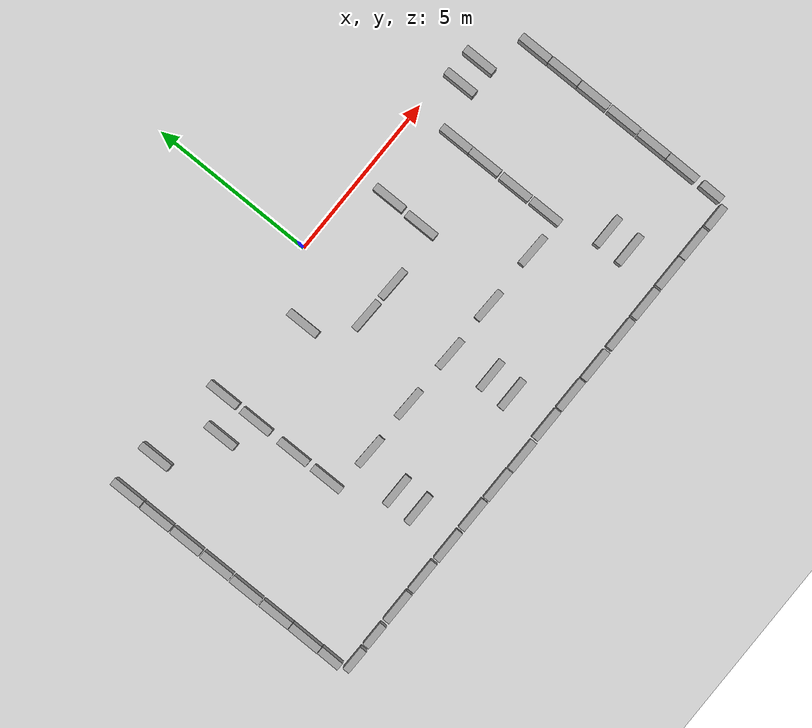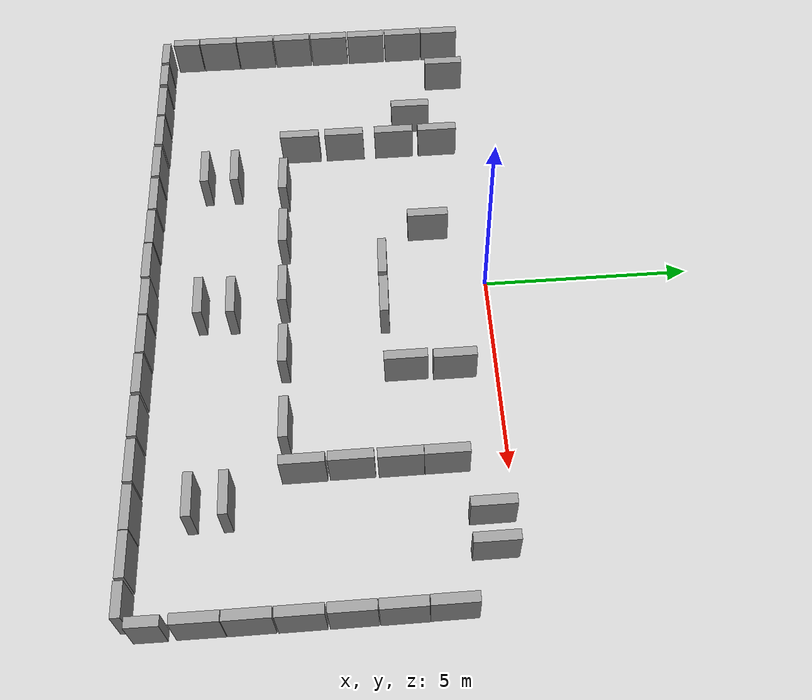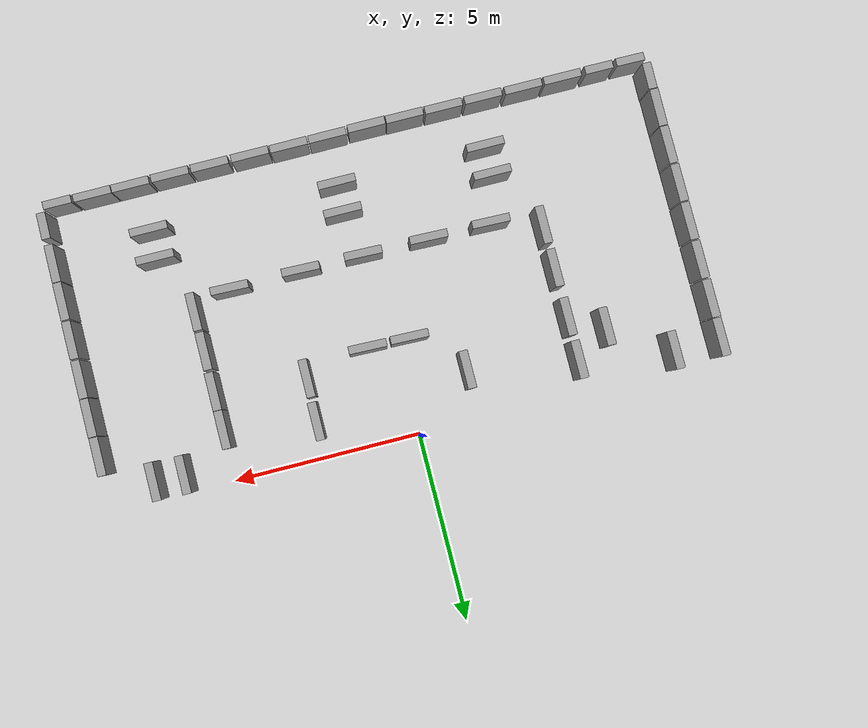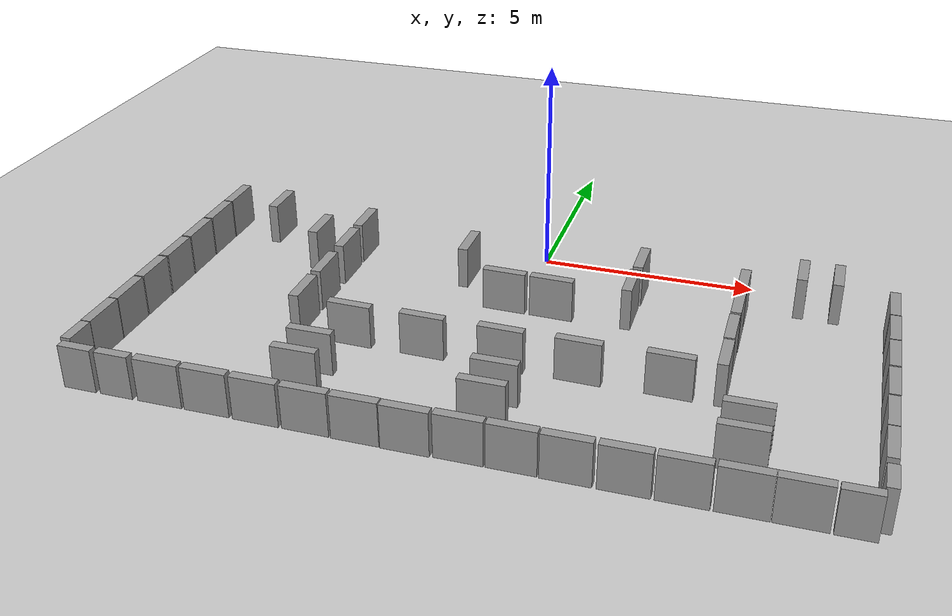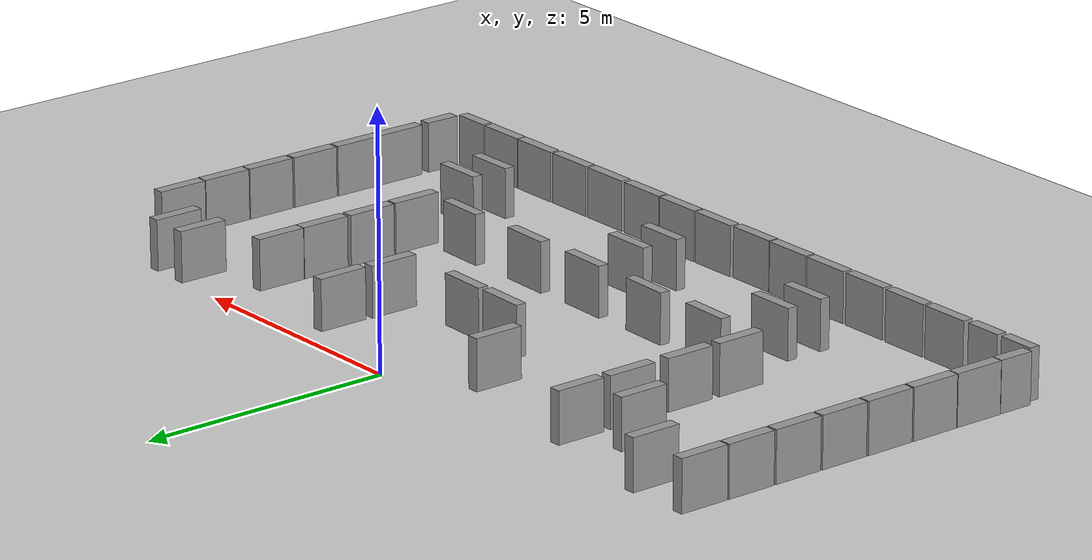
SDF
<sdf version="1.6">
 <world name="default">
  <model name="ground_plane">
   <static>1</static>
   <static>1</static>
   <link name="link">
    <collision name="collision">
     <geometry><plane><normal>0 0 1</normal><size>100 100</size></plane></geometry>
     <surface><friction><ode><mu>100</mu><mu2>50</mu2></ode></friction></surface>
    </collision>
    <visual name="visual">
     <cast_shadows>0</cast_shadows>
     <geometry><plane><normal>0 0 1</normal><size>100 100</size></plane></geometry>
     <material>
      <script><uri>file://media/materials/scripts/gazebo.material</uri><name>Gazebo/Grey</name></script>
     </material>
    </visual>
   </link>
  </model>
  <model name="unit_box_0_clone_8">
   <pose>8.11912 -1.48629 0.5 0 -0 0.000237</pose>
   <link name="link">
    <inertial>
     <mass>1</mass>
     <inertia>
      <ixx>0.166667</ixx>
      <ixy>0</ixy>
      <ixz>0</ixz>
      <iyy>0.166667</iyy>
      <iyz>0</iyz>
      <izz>0.166667</izz>
     </inertia>
    </inertial>
    <collision name="collision"><geometry><box><size>0.230819 1 1</size></box></geometry></collision>
    <visual name="visual">
     <geometry><box><size>0.230819 1 1</size></box></geometry>
     <material>
      <script><name>Gazebo/Grey</name><uri>file://media/materials/scripts/gazebo.material</uri></script>
     </material>
    </visual>
   </link>
  </model>
  <model name="unit_box_0_clone_9">
   <pose>8.12548 -2.5042 0.5 0 -0 0.000237</pose>
   <link name="link">
    <inertial>
     <mass>1</mass>
     <inertia>
      <ixx>0.166667</ixx>
      <ixy>0</ixy>
      <ixz>0</ixz>
      <iyy>0.166667</iyy>
      <iyz>0</iyz>
      <izz>0.166667</izz>
     </inertia>
    </inertial>
    <collision name="collision"><geometry><box><size>0.230819 1 1</size></box></geometry></collision>
    <visual name="visual">
     <geometry><box><size>0.230819 1 1</size></box></geometry>
     <material>
      <script><name>Gazebo/Grey</name><uri>file://media/materials/scripts/gazebo.material</uri></script>
     </material>
    </visual>
   </link>
  </model>
  <model name="unit_box_0_clone_10">
   <pose>8.12331 -3.52223 0.5 0 -0 0.000237</pose>
   <link name="link">
    <inertial>
     <mass>1</mass>
     <inertia>
      <ixx>0.166667</ixx>
      <ixy>0</ixy>
      <ixz>0</ixz>
      <iyy>0.166667</iyy>
      <iyz>0</iyz>
      <izz>0.166667</izz>
     </inertia>
    </inertial>
    <collision name="collision"><geometry><box><size>0.230819 1 1</size></box></geometry></collision>
    <visual name="visual">
     <geometry><box><size>0.230819 1 1</size></box></geometry>
     <material>
      <script><name>Gazebo/Grey</name><uri>file://media/materials/scripts/gazebo.material</uri></script>
     </material>
    </visual>
   </link>
  </model>
  <model name="unit_box_0_clone_11">
   <pose>8.1233 -4.56316 0.5 0 -0 0.000237</pose>
   <link name="link">
    <inertial>
     <mass>1</mass>
     <inertia>
      <ixx>0.166667</ixx>
      <ixy>0</ixy>
      <ixz>0</ixz>
      <iyy>0.166667</iyy>
      <iyz>0</iyz>
      <izz>0.166667</izz>
     </inertia>
    </inertial>
    <collision name="collision"><geometry><box><size>0.230819 1 1</size></box></geometry></collision>
    <visual name="visual">
     <geometry><box><size>0.230819 1 1</size></box></geometry>
     <material>
      <script><name>Gazebo/Grey</name><uri>file://media/materials/scripts/gazebo.material</uri></script>
     </material>
    </visual>
   </link>
  </model>
  <model name="unit_box_0_clone_12">
   <pose>8.11815 -5.59377 0.5 0 -0 0.000237</pose>
   <link name="link">
    <inertial>
     <mass>1</mass>
     <inertia>
      <ixx>0.166667</ixx>
      <ixy>0</ixy>
      <ixz>0</ixz>
      <iyy>0.166667</iyy>
      <iyz>0</iyz>
      <izz>0.166667</izz>
     </inertia>
    </inertial>
    <collision name="collision"><geometry><box><size>0.230819 1 1</size></box></geometry></collision>
    <visual name="visual">
     <geometry><box><size>0.230819 1 1</size></box></geometry>
     <material>
      <script><name>Gazebo/Grey</name><uri>file://media/materials/scripts/gazebo.material</uri></script>
     </material>
    </visual>
   </link>
  </model>
  <model name="unit_box_0_clone_13">
   <pose>8.11333 -6.60776 0.5 0 -0 -0.005418</pose>
   <link name="link">
    <inertial>
     <mass>1</mass>
     <inertia>
      <ixx>0.166667</ixx>
      <ixy>0</ixy>
      <ixz>0</ixz>
      <iyy>0.166667</iyy>
      <iyz>0</iyz>
      <izz>0.166667</izz>
     </inertia>
    </inertial>
    <collision name="collision"><geometry><box><size>0.230819 1 1</size></box></geometry></collision>
    <visual name="visual">
     <geometry><box><size>0.230819 1 1</size></box></geometry>
     <material>
      <script><name>Gazebo/Grey</name><uri>file://media/materials/scripts/gazebo.material</uri></script>
     </material>
    </visual>
   </link>
  </model>
  <model name="unit_box_clone_15_clone_0">
   <pose>6.71207 -8.13083 0.5 0 -0 0.000459</pose>
   <link name="link">
    <inertial>
     <mass>1</mass>
     <inertia>
      <ixx>0.166667</ixx>
      <ixy>0</ixy>
      <ixz>0</ixz>
      <iyy>0.166667</iyy>
      <iyz>0</iyz>
      <izz>0.166667</izz>
     </inertia>
    </inertial>
    <collision name="collision"><geometry><box><size>1 0.210541 1</size></box></geometry></collision>
    <visual name="visual">
     <geometry><box><size>1 0.210541 1</size></box></geometry>
     <material>
      <script><name>Gazebo/Grey</name><uri>file://media/materials/scripts/gazebo.material</uri></script>
     </material>
    </visual>
   </link>
  </model>
  <model name="unit_box_clone_15_clone_1">
   <pose>5.69715 -8.13082 0.5 0 -0 0.000459</pose>
   <link name="link">
    <inertial>
     <mass>1</mass>
     <inertia>
      <ixx>0.166667</ixx>
      <ixy>0</ixy>
      <ixz>0</ixz>
      <iyy>0.166667</iyy>
      <iyz>0</iyz>
      <izz>0.166667</izz>
     </inertia>
    </inertial>
    <collision name="collision"><geometry><box><size>1 0.210541 1</size></box></geometry></collision>
    <visual name="visual">
     <geometry><box><size>1 0.210541 1</size></box></geometry>
     <material>
      <script><name>Gazebo/Grey</name><uri>file://media/materials/scripts/gazebo.material</uri></script>
     </material>
    </visual>
   </link>
  </model>
  <model name="unit_box_clone_15_clone_2">
   <pose>4.63881 -8.137 0.5 0 -0 0.000459</pose>
   <link name="link">
    <inertial>
     <mass>1</mass>
     <inertia>
      <ixx>0.166667</ixx>
      <ixy>0</ixy>
      <ixz>0</ixz>
      <iyy>0.166667</iyy>
      <iyz>0</iyz>
      <izz>0.166667</izz>
     </inertia>
    </inertial>
    <collision name="collision"><geometry><box><size>1 0.210541 1</size></box></geometry></collision>
    <visual name="visual">
     <geometry><box><size>1 0.210541 1</size></box></geometry>
     <material>
      <script><name>Gazebo/Grey</name><uri>file://media/materials/scripts/gazebo.material</uri></script>
     </material>
    </visual>
   </link>
  </model>
  <model name="unit_box_clone_15_clone_3">
   <pose>3.57975 -8.137 0.5 0 -0 0.000459</pose>
   <link name="link">
    <inertial>
     <mass>1</mass>
     <inertia>
      <ixx>0.166667</ixx>
      <ixy>0</ixy>
      <ixz>0</ixz>
      <iyy>0.166667</iyy>
      <iyz>0</iyz>
      <izz>0.166667</izz>
     </inertia>
    </inertial>
    <collision name="collision"><geometry><box><size>1 0.210541 1</size></box></geometry></collision>
    <visual name="visual">
     <geometry><box><size>1 0.210541 1</size></box></geometry>
     <material>
      <script><name>Gazebo/Grey</name><uri>file://media/materials/scripts/gazebo.material</uri></script>
     </material>
    </visual>
   </link>
  </model>
  <model name="unit_box_clone_15_clone_4">
   <pose>2.49815 -8.13699 0.5 0 -0 0.000459</pose>
   <link name="link">
    <inertial>
     <mass>1</mass>
     <inertia>
      <ixx>0.166667</ixx>
      <ixy>0</ixy>
      <ixz>0</ixz>
      <iyy>0.166667</iyy>
      <iyz>0</iyz>
      <izz>0.166667</izz>
     </inertia>
    </inertial>
    <collision name="collision"><geometry><box><size>1 0.210541 1</size></box></geometry></collision>
    <visual name="visual">
     <geometry><box><size>1 0.210541 1</size></box></geometry>
     <material>
      <script><name>Gazebo/Grey</name><uri>file://media/materials/scripts/gazebo.material</uri></script>
     </material>
    </visual>
   </link>
  </model>
  <model name="unit_box_clone_15_clone_5">
   <pose>1.46162 -8.12572 0.5 0 -0 0.000459</pose>
   <link name="link">
    <inertial>
     <mass>1</mass>
     <inertia>
      <ixx>0.166667</ixx>
      <ixy>0</ixy>
      <ixz>0</ixz>
      <iyy>0.166667</iyy>
      <iyz>0</iyz>
      <izz>0.166667</izz>
     </inertia>
    </inertial>
    <collision name="collision"><geometry><box><size>1 0.210541 1</size></box></geometry></collision>
    <visual name="visual">
     <geometry><box><size>1 0.210541 1</size></box></geometry>
     <material>
      <script><name>Gazebo/Grey</name><uri>file://media/materials/scripts/gazebo.material</uri></script>
     </material>
    </visual>
   </link>
  </model>
  <model name="unit_box_clone_15_clone_6">
   <pose>0.425086 -8.12571 0.5 0 -0 0.000459</pose>
   <link name="link">
    <inertial>
     <mass>1</mass>
     <inertia>
      <ixx>0.166667</ixx>
      <ixy>0</ixy>
      <ixz>0</ixz>
      <iyy>0.166667</iyy>
      <iyz>0</iyz>
      <izz>0.166667</izz>
     </inertia>
    </inertial>
    <collision name="collision"><geometry><box><size>1 0.210541 1</size></box></geometry></collision>
    <visual name="visual">
     <geometry><box><size>1 0.210541 1</size></box></geometry>
     <material>
      <script><name>Gazebo/Grey</name><uri>file://media/materials/scripts/gazebo.material</uri></script>
     </material>
    </visual>
   </link>
  </model>
  <model name="unit_box_clone_15_clone_7">
   <pose>-0.633976 -8.14826 0.5 0 -0 0.000459</pose>
   <link name="link">
    <inertial>
     <mass>1</mass>
     <inertia>
      <ixx>0.166667</ixx>
      <ixy>0</ixy>
      <ixz>0</ixz>
      <iyy>0.166667</iyy>
      <iyz>0</iyz>
      <izz>0.166667</izz>
     </inertia>
    </inertial>
    <collision name="collision"><geometry><box><size>1 0.210541 1</size></box></geometry></collision>
    <visual name="visual">
     <geometry><box><size>1 0.210541 1</size></box></geometry>
     <material>
      <script><name>Gazebo/Grey</name><uri>file://media/materials/scripts/gazebo.material</uri></script>
     </material>
    </visual>
   </link>
  </model>
  <model name="unit_box_clone_15_clone_8">
   <pose>-1.65923 -8.13698 0.5 0 -0 0.000459</pose>
   <link name="link">
    <inertial>
     <mass>1</mass>
     <inertia>
      <ixx>0.166667</ixx>
      <ixy>0</ixy>
      <ixz>0</ixz>
      <iyy>0.166667</iyy>
      <iyz>0</iyz>
      <izz>0.166667</izz>
     </inertia>
    </inertial>
    <collision name="collision"><geometry><box><size>1 0.210541 1</size></box></geometry></collision>
    <visual name="visual">
     <geometry><box><size>1 0.210541 1</size></box></geometry>
     <material>
      <script><name>Gazebo/Grey</name><uri>file://media/materials/scripts/gazebo.material</uri></script>
     </material>
    </visual>
   </link>
  </model>
  <model name="unit_box_clone_15_clone_9">
   <pose>-2.70703 -8.12573 0.5 0 -0 0.000459</pose>
   <link name="link">
    <inertial>
     <mass>1</mass>
     <inertia>
      <ixx>0.166667</ixx>
      <ixy>0</ixy>
      <ixz>0</ixz>
      <iyy>0.166667</iyy>
      <iyz>0</iyz>
      <izz>0.166667</izz>
     </inertia>
    </inertial>
    <collision name="collision"><geometry><box><size>1 0.210541 1</size></box></geometry></collision>
    <visual name="visual">
     <geometry><box><size>1 0.210541 1</size></box></geometry>
     <material>
      <script><name>Gazebo/Grey</name><uri>file://media/materials/scripts/gazebo.material</uri></script>
     </material>
    </visual>
   </link>
  </model>
  <model name="unit_box_clone_15_clone_10">
   <pose>-3.77736 -8.12572 0.5 0 -0 0.000459</pose>
   <link name="link">
    <inertial>
     <mass>1</mass>
     <inertia>
      <ixx>0.166667</ixx>
      <ixy>0</ixy>
      <ixz>0</ixz>
      <iyy>0.166667</iyy>
      <iyz>0</iyz>
      <izz>0.166667</izz>
     </inertia>
    </inertial>
    <collision name="collision"><geometry><box><size>1 0.210541 1</size></box></geometry></collision>
    <visual name="visual">
     <geometry><box><size>1 0.210541 1</size></box></geometry>
     <material>
      <script><name>Gazebo/Grey</name><uri>file://media/materials/scripts/gazebo.material</uri></script>
     </material>
    </visual>
   </link>
  </model>
  <model name="unit_box_clone_15_clone_11">
   <pose>-4.85896 -8.11446 0.5 0 -0 0.000459</pose>
   <link name="link">
    <inertial>
     <mass>1</mass>
     <inertia>
      <ixx>0.166667</ixx>
      <ixy>0</ixy>
      <ixz>0</ixz>
      <iyy>0.166667</iyy>
      <iyz>0</iyz>
      <izz>0.166667</izz>
     </inertia>
    </inertial>
    <collision name="collision"><geometry><box><size>1 0.210541 1</size></box></geometry></collision>
    <visual name="visual">
     <geometry><box><size>1 0.210541 1</size></box></geometry>
     <material>
      <script><name>Gazebo/Grey</name><uri>file://media/materials/scripts/gazebo.material</uri></script>
     </material>
    </visual>
   </link>
  </model>
  <model name="unit_box_clone_15_clone_12">
   <pose>-5.91802 -8.11445 0.5 0 -0 0.000459</pose>
   <link name="link">
    <inertial>
     <mass>1</mass>
     <inertia>
      <ixx>0.166667</ixx>
      <ixy>0</ixy>
      <ixz>0</ixz>
      <iyy>0.166667</iyy>
      <iyz>0</iyz>
      <izz>0.166667</izz>
     </inertia>
    </inertial>
    <collision name="collision"><geometry><box><size>1 0.210541 1</size></box></geometry></collision>
    <visual name="visual">
     <geometry><box><size>1 0.210541 1</size></box></geometry>
     <material>
      <script><name>Gazebo/Grey</name><uri>file://media/materials/scripts/gazebo.material</uri></script>
     </material>
    </visual>
   </link>
  </model>
  <model name="unit_box_0_clone_4_clone_7">
   <pose>-8.12609 -0.518035 0.5 0 -0 0.000237</pose>
   <link name="link">
    <inertial>
     <mass>1</mass>
     <inertia>
      <ixx>0.166667</ixx>
      <ixy>0</ixy>
      <ixz>0</ixz>
      <iyy>0.166667</iyy>
      <iyz>0</iyz>
      <izz>0.166667</izz>
     </inertia>
    </inertial>
    <collision name="collision"><geometry><box><size>0.230819 1 1</size></box></geometry></collision>
    <visual name="visual">
     <geometry><box><size>0.230819 1 1</size></box></geometry>
     <material>
      <script><name>Gazebo/Grey</name><uri>file://media/materials/scripts/gazebo.material</uri></script>
     </material>
    </visual>
   </link>
  </model>
  <model name="unit_box_0_clone_4_clone_8">
   <pose>-8.13284 -1.54445 0.5 0 -0 0.000237</pose>
   <link name="link">
    <inertial>
     <mass>1</mass>
     <inertia>
      <ixx>0.166667</ixx>
      <ixy>0</ixy>
      <ixz>0</ixz>
      <iyy>0.166667</iyy>
      <iyz>0</iyz>
      <izz>0.166667</izz>
     </inertia>
    </inertial>
    <collision name="collision"><geometry><box><size>0.230819 1 1</size></box></geometry></collision>
    <visual name="visual">
     <geometry><box><size>0.230819 1 1</size></box></geometry>
     <material>
      <script><name>Gazebo/Grey</name><uri>file://media/materials/scripts/gazebo.material</uri></script>
     </material>
    </visual>
   </link>
  </model>
  <model name="unit_box_0_clone_4_clone_9">
   <pose>-8.13285 -2.58439 0.5 0 -0 0.000237</pose>
   <link name="link">
    <inertial>
     <mass>1</mass>
     <inertia>
      <ixx>0.166667</ixx>
      <ixy>0</ixy>
      <ixz>0</ixz>
      <iyy>0.166667</iyy>
      <iyz>0</iyz>
      <izz>0.166667</izz>
     </inertia>
    </inertial>
    <collision name="collision"><geometry><box><size>0.230819 1 1</size></box></geometry></collision>
    <visual name="visual">
     <geometry><box><size>0.230819 1 1</size></box></geometry>
     <material>
      <script><name>Gazebo/Grey</name><uri>file://media/materials/scripts/gazebo.material</uri></script>
     </material>
    </visual>
   </link>
  </model>
  <model name="unit_box_0_clone_4_clone_10">
   <pose>-8.13285 -3.62431 0.5 0 -0 0.000237</pose>
   <link name="link">
    <inertial>
     <mass>1</mass>
     <inertia>
      <ixx>0.166667</ixx>
      <ixy>0</ixy>
      <ixz>0</ixz>
      <iyy>0.166667</iyy>
      <iyz>0</iyz>
      <izz>0.166667</izz>
     </inertia>
    </inertial>
    <collision name="collision"><geometry><box><size>0.230819 1 1</size></box></geometry></collision>
    <visual name="visual">
     <geometry><box><size>0.230819 1 1</size></box></geometry>
     <material>
      <script><name>Gazebo/Grey</name><uri>file://media/materials/scripts/gazebo.material</uri></script>
     </material>
    </visual>
   </link>
  </model>
  <model name="unit_box_0_clone_4_clone_11">
   <pose>-8.1396 -4.65747 0.5 0 -0 0.000237</pose>
   <link name="link">
    <inertial>
     <mass>1</mass>
     <inertia>
      <ixx>0.166667</ixx>
      <ixy>0</ixy>
      <ixz>0</ixz>
      <iyy>0.166667</iyy>
      <iyz>0</iyz>
      <izz>0.166667</izz>
     </inertia>
    </inertial>
    <collision name="collision"><geometry><box><size>0.230819 1 1</size></box></geometry></collision>
    <visual name="visual">
     <geometry><box><size>0.230819 1 1</size></box></geometry>
     <material>
      <script><name>Gazebo/Grey</name><uri>file://media/materials/scripts/gazebo.material</uri></script>
     </material>
    </visual>
   </link>
  </model>
  <model name="unit_box_0_clone_4_clone_12">
   <pose>-8.1396 -5.69064 0.5 0 -0 0.000237</pose>
   <link name="link">
    <inertial>
     <mass>1</mass>
     <inertia>
      <ixx>0.166667</ixx>
      <ixy>0</ixy>
      <ixz>0</ixz>
      <iyy>0.166667</iyy>
      <iyz>0</iyz>
      <izz>0.166667</izz>
     </inertia>
    </inertial>
    <collision name="collision"><geometry><box><size>0.230819 1 1</size></box></geometry></collision>
    <visual name="visual">
     <geometry><box><size>0.230819 1 1</size></box></geometry>
     <material>
      <script><name>Gazebo/Grey</name><uri>file://media/materials/scripts/gazebo.material</uri></script>
     </material>
    </visual>
   </link>
  </model>
  <model name="unit_box_0_clone_4_clone_13">
   <pose>-8.14113 -6.70873 0.5 0 -0 -0.008646</pose>
   <link name="link">
    <inertial>
     <mass>1</mass>
     <inertia>
      <ixx>0.166667</ixx>
      <ixy>0</ixy>
      <ixz>0</ixz>
      <iyy>0.166667</iyy>
      <iyz>0</iyz>
      <izz>0.166667</izz>
     </inertia>
    </inertial>
    <collision name="collision"><geometry><box><size>0.230819 1 1</size></box></geometry></collision>
    <visual name="visual">
     <geometry><box><size>0.230819 1 1</size></box></geometry>
     <material>
      <script><name>Gazebo/Grey</name><uri>file://media/materials/scripts/gazebo.material</uri></script>
     </material>
    </visual>
   </link>
  </model>
  <model name="unit_box_clone_11_clone_1_clone_0">
   <pose>-6.9088 -8.11956 0.499997 -3e-06 7e-06 -0.002987</pose>
   <link name="link">
    <inertial>
     <mass>1</mass>
     <inertia>
      <ixx>0.166667</ixx>
      <ixy>0</ixy>
      <ixz>0</ixz>
      <iyy>0.166667</iyy>
      <iyz>0</iyz>
      <izz>0.166667</izz>
     </inertia>
    </inertial>
    <collision name="collision"><geometry><box><size>0.750223 0.210541 1</size></box></geometry></collision>
    <visual name="visual">
     <geometry><box><size>0.750223 0.210541 1</size></box></geometry>
     <material>
      <script><name>Gazebo/Grey</name><uri>file://media/materials/scripts/gazebo.material</uri></script>
     </material>
    </visual>
   </link>
  </model>
  <model name="unit_box_0_clone_4_clone_13_clone_clone">
   <pose>-8.13833 -7.57661 0.500001 -2e-06 -0 -0.013302</pose>
   <link name="link">
    <inertial>
     <mass>1</mass>
     <inertia>
      <ixx>0.166667</ixx>
      <ixy>0</ixy>
      <ixz>0</ixz>
      <iyy>0.166667</iyy>
      <iyz>0</iyz>
      <izz>0.166667</izz>
     </inertia>
    </inertial>
    <collision name="collision"><geometry><box><size>0.230819 0.700336 1</size></box></geometry></collision>
    <visual name="visual">
     <geometry><box><size>0.230819 0.700336 1</size></box></geometry>
     <material>
      <script><name>Gazebo/Grey</name><uri>file://media/materials/scripts/gazebo.material</uri></script>
     </material>
    </visual>
   </link>
  </model>
  <model name="unit_box_clone_11_clone_1_clone_0_clone">
   <pose>-7.75475 -8.12201 0.499997 -2e-06 -8e-06 -0.00968</pose>
   <link name="link">
    <inertial>
     <mass>1</mass>
     <inertia>
      <ixx>0.166667</ixx>
      <ixy>0</ixy>
      <ixz>0</ixz>
      <iyy>0.166667</iyy>
      <iyz>0</iyz>
      <izz>0.166667</izz>
     </inertia>
    </inertial>
    <collision name="collision"><geometry><box><size>0.750223 0.210541 1</size></box></geometry></collision>
    <visual name="visual">
     <geometry><box><size>0.750223 0.210541 1</size></box></geometry>
     <material>
      <script><name>Gazebo/Grey</name><uri>file://media/materials/scripts/gazebo.material</uri></script>
     </material>
    </visual>
   </link>
  </model>
  <model name="unit_box_clone_11_clone_1_clone_2">
   <pose>7.64248 -8.13927 0.499997 -2e-06 7e-06 0.003299</pose>
   <link name="link">
    <inertial>
     <mass>1</mass>
     <inertia>
      <ixx>0.166667</ixx>
      <ixy>0</ixy>
      <ixz>0</ixz>
      <iyy>0.166667</iyy>
      <iyz>0</iyz>
      <izz>0.166667</izz>
     </inertia>
    </inertial>
    <collision name="collision"><geometry><box><size>0.750223 0.210541 1</size></box></geometry></collision>
    <visual name="visual">
     <geometry><box><size>0.750223 0.210541 1</size></box></geometry>
     <material>
      <script><name>Gazebo/Grey</name><uri>file://media/materials/scripts/gazebo.material</uri></script>
     </material>
    </visual>
   </link>
  </model>
  <model name="unit_box_0_clone_4_clone_13_clone_clone_clone">
   <pose>8.11858 -7.62155 0.499997 -7e-06 -3e-06 -0.008917</pose>
   <link name="link">
    <inertial>
     <mass>1</mass>
     <inertia>
      <ixx>0.166667</ixx>
      <ixy>0</ixy>
      <ixz>0</ixz>
      <iyy>0.166667</iyy>
      <iyz>0</iyz>
      <izz>0.166667</izz>
     </inertia>
    </inertial>
    <collision name="collision"><geometry><box><size>0.230819 0.700336 1</size></box></geometry></collision>
    <visual name="visual">
     <geometry><box><size>0.230819 0.700336 1</size></box></geometry>
     <material>
      <script><name>Gazebo/Grey</name><uri>file://media/materials/scripts/gazebo.material</uri></script>
     </material>
    </visual>
   </link>
  </model>
  <model name="unit_box_clone_2_clone_1">
   <pose>-0.35263 -2.50405 0.499999 -1e-06 2e-06 -0.026768</pose>
   <link name="link">
    <inertial>
     <mass>1</mass>
     <inertia>
      <ixx>0.166667</ixx>
      <ixy>0</ixy>
      <ixz>0</ixz>
      <iyy>0.166667</iyy>
      <iyz>0</iyz>
      <izz>0.166667</izz>
     </inertia>
    </inertial>
    <collision name="collision"><geometry><box><size>1 0.210541 1</size></box></geometry></collision>
    <visual name="visual">
     <geometry><box><size>1 0.210541 1</size></box></geometry>
     <material>
      <script><name>Gazebo/Grey</name><uri>file://media/materials/scripts/gazebo.material</uri></script>
     </material>
    </visual>
   </link>
  </model>
  <model name="unit_box_clone_2_clone_2">
   <pose>0.755891 -2.52044 0.499999 1e-06 2e-06 -0.02671</pose>
   <link name="link">
    <inertial>
     <mass>1</mass>
     <inertia>
      <ixx>0.166667</ixx>
      <ixy>0</ixy>
      <ixz>0</ixz>
      <iyy>0.166667</iyy>
      <iyz>0</iyz>
      <izz>0.166667</izz>
     </inertia>
    </inertial>
    <collision name="collision"><geometry><box><size>1 0.210541 1</size></box></geometry></collision>
    <visual name="visual">
     <geometry><box><size>1 0.210541 1</size></box></geometry>
     <material>
      <script><name>Gazebo/Grey</name><uri>file://media/materials/scripts/gazebo.material</uri></script>
     </material>
    </visual>
   </link>
  </model>
  <model name="unit_box_0_clone_4_clone_6_clone_1">
   <pose>-1.59156 -1.31407 0.5 0 -0 0.000257</pose>
   <link name="link">
    <inertial>
     <mass>1</mass>
     <inertia>
      <ixx>0.166667</ixx>
      <ixy>0</ixy>
      <ixz>0</ixz>
      <iyy>0.166667</iyy>
      <iyz>0</iyz>
      <izz>0.166667</izz>
     </inertia>
    </inertial>
    <collision name="collision"><geometry><box><size>0.230819 1 1</size></box></geometry></collision>
    <visual name="visual">
     <geometry><box><size>0.230819 1 1</size></box></geometry>
     <material>
      <script><name>Gazebo/Grey</name><uri>file://media/materials/scripts/gazebo.material</uri></script>
     </material>
    </visual>
   </link>
  </model>
  <model name="unit_box_0_clone_4_clone_6_clone_4">
   <pose>2.5002 -0.988047 0.5 0 -0 0.000308</pose>
   <link name="link">
    <inertial>
     <mass>1</mass>
     <inertia>
      <ixx>0.166667</ixx>
      <ixy>0</ixy>
      <ixz>0</ixz>
      <iyy>0.166667</iyy>
      <iyz>0</iyz>
      <izz>0.166667</izz>
     </inertia>
    </inertial>
    <collision name="collision"><geometry><box><size>0.230819 1 1</size></box></geometry></collision>
    <visual name="visual">
     <geometry><box><size>0.230819 1 1</size></box></geometry>
     <material>
      <script><name>Gazebo/Grey</name><uri>file://media/materials/scripts/gazebo.material</uri></script>
     </material>
    </visual>
   </link>
  </model>
  <model name="unit_box_0_clone_4_clone_6_clone_5">
   <pose>2.46759 -2.11287 0.5 0 -0 0.000236</pose>
   <link name="link">
    <inertial>
     <mass>1</mass>
     <inertia>
      <ixx>0.166667</ixx>
      <ixy>0</ixy>
      <ixz>0</ixz>
      <iyy>0.166667</iyy>
      <iyz>0</iyz>
      <izz>0.166667</izz>
     </inertia>
    </inertial>
    <collision name="collision"><geometry><box><size>0.230819 1 1</size></box></geometry></collision>
    <visual name="visual">
     <geometry><box><size>0.230819 1 1</size></box></geometry>
     <material>
      <script><name>Gazebo/Grey</name><uri>file://media/materials/scripts/gazebo.material</uri></script>
     </material>
    </visual>
   </link>
  </model>
  <model name="unit_box_0_clone_4_clone_6_clone_8">
   <pose>-4.44438 -0.857599 0.5 0 -0 0.000329</pose>
   <link name="link">
    <inertial>
     <mass>1</mass>
     <inertia>
      <ixx>0.166667</ixx>
      <ixy>0</ixy>
      <ixz>0</ixz>
      <iyy>0.166667</iyy>
      <iyz>0</iyz>
      <izz>0.166667</izz>
     </inertia>
    </inertial>
    <collision name="collision"><geometry><box><size>0.230819 1 1</size></box></geometry></collision>
    <visual name="visual">
     <geometry><box><size>0.230819 1 1</size></box></geometry>
     <material>
      <script><name>Gazebo/Grey</name><uri>file://media/materials/scripts/gazebo.material</uri></script>
     </material>
    </visual>
   </link>
  </model>
  <model name="unit_box_0_clone_4_clone_6_clone_9">
   <pose>-4.44439 -2 0.5 0 -0 0.000316</pose>
   <link name="link">
    <inertial>
     <mass>1</mass>
     <inertia>
      <ixx>0.166667</ixx>
      <ixy>0</ixy>
      <ixz>0</ixz>
      <iyy>0.166667</iyy>
      <iyz>0</iyz>
      <izz>0.166667</izz>
     </inertia>
    </inertial>
    <collision name="collision"><geometry><box><size>0.230819 1 1</size></box></geometry></collision>
    <visual name="visual">
     <geometry><box><size>0.230819 1 1</size></box></geometry>
     <material>
      <script><name>Gazebo/Grey</name><uri>file://media/materials/scripts/gazebo.material</uri></script>
     </material>
    </visual>
   </link>
  </model>
  <model name="unit_box_0_clone_4_clone_6_clone_10">
   <pose>-4.4444 -3.30287 0.5 0 -0 0.000267</pose>
   <link name="link">
    <inertial>
     <mass>1</mass>
     <inertia>
      <ixx>0.166667</ixx>
      <ixy>0</ixy>
      <ixz>0</ixz>
      <iyy>0.166667</iyy>
      <iyz>0</iyz>
      <izz>0.166667</izz>
     </inertia>
    </inertial>
    <collision name="collision"><geometry><box><size>0.230819 1 1</size></box></geometry></collision>
    <visual name="visual">
     <geometry><box><size>0.230819 1 1</size></box></geometry>
     <material>
      <script><name>Gazebo/Grey</name><uri>file://media/materials/scripts/gazebo.material</uri></script>
     </material>
    </visual>
   </link>
  </model>
  <model name="unit_box_0_clone_4_clone_6_clone_11">
   <pose>-4.4444 -4.4603 0.5 0 -0 0.000277</pose>
   <link name="link">
    <inertial>
     <mass>1</mass>
     <inertia>
      <ixx>0.166667</ixx>
      <ixy>0</ixy>
      <ixz>0</ixz>
      <iyy>0.166667</iyy>
      <iyz>0</iyz>
      <izz>0.166667</izz>
     </inertia>
    </inertial>
    <collision name="collision"><geometry><box><size>0.230819 1 1</size></box></geometry></collision>
    <visual name="visual">
     <geometry><box><size>0.230819 1 1</size></box></geometry>
     <material>
      <script><name>Gazebo/Grey</name><uri>file://media/materials/scripts/gazebo.material</uri></script>
     </material>
    </visual>
   </link>
  </model>
  <model name="unit_box_0_clone_4_clone_6_clone_2_clone_3">
   <pose>4.87677 -1.36858 0.5 0 -0 0.000326</pose>
   <link name="link">
    <inertial>
     <mass>1</mass>
     <inertia>
      <ixx>0.166667</ixx>
      <ixy>0</ixy>
      <ixz>0</ixz>
      <iyy>0.166667</iyy>
      <iyz>0</iyz>
      <izz>0.166667</izz>
     </inertia>
    </inertial>
    <collision name="collision"><geometry><box><size>0.230819 1 1</size></box></geometry></collision>
    <visual name="visual">
     <geometry><box><size>0.230819 1 1</size></box></geometry>
     <material>
      <script><name>Gazebo/Grey</name><uri>file://media/materials/scripts/gazebo.material</uri></script>
     </material>
    </visual>
   </link>
  </model>
  <model name="unit_box_0_clone_4_clone_6_clone_2_clone_4">
   <pose>4.87677 -2.37555 0.5 0 -0 0.000296</pose>
   <link name="link">
    <inertial>
     <mass>1</mass>
     <inertia>
      <ixx>0.166667</ixx>
      <ixy>0</ixy>
      <ixz>0</ixz>
      <iyy>0.166667</iyy>
      <iyz>0</iyz>
      <izz>0.166667</izz>
     </inertia>
    </inertial>
    <collision name="collision"><geometry><box><size>0.230819 1 1</size></box></geometry></collision>
    <visual name="visual">
     <geometry><box><size>0.230819 1 1</size></box></geometry>
     <material>
      <script><name>Gazebo/Grey</name><uri>file://media/materials/scripts/gazebo.material</uri></script>
     </material>
    </visual>
   </link>
  </model>
  <model name="unit_box_0_clone_4_clone_6_clone_2_clone_5">
   <pose>4.86659 -3.44355 0.5 0 -0 0.000265</pose>
   <link name="link">
    <inertial>
     <mass>1</mass>
     <inertia>
      <ixx>0.166667</ixx>
      <ixy>0</ixy>
      <ixz>0</ixz>
      <iyy>0.166667</iyy>
      <iyz>0</iyz>
      <izz>0.166667</izz>
     </inertia>
    </inertial>
    <collision name="collision"><geometry><box><size>0.230819 1 1</size></box></geometry></collision>
    <visual name="visual">
     <geometry><box><size>0.230819 1 1</size></box></geometry>
     <material>
      <script><name>Gazebo/Grey</name><uri>file://media/materials/scripts/gazebo.material</uri></script>
     </material>
    </visual>
   </link>
  </model>
  <model name="unit_box_0_clone_4_clone_6_clone_2_clone_6">
   <pose>4.87676 -4.49121 0.5 0 -0 0.000259</pose>
   <link name="link">
    <inertial>
     <mass>1</mass>
     <inertia>
      <ixx>0.166667</ixx>
      <ixy>0</ixy>
      <ixz>0</ixz>
      <iyy>0.166667</iyy>
      <iyz>0</iyz>
      <izz>0.166667</izz>
     </inertia>
    </inertial>
    <collision name="collision"><geometry><box><size>0.230819 1 1</size></box></geometry></collision>
    <visual name="visual">
     <geometry><box><size>0.230819 1 1</size></box></geometry>
     <material>
      <script><name>Gazebo/Grey</name><uri>file://media/materials/scripts/gazebo.material</uri></script>
     </material>
    </visual>
   </link>
  </model>
  <model name="unit_box_clone_2_clone_1_clone">
   <pose>-3.1427 -4.88849 0.5 0 0 -0.026725</pose>
   <link name="link">
    <inertial>
     <mass>1</mass>
     <inertia>
      <ixx>0.166667</ixx>
      <ixy>0</ixy>
      <ixz>0</ixz>
      <iyy>0.166667</iyy>
      <iyz>0</iyz>
      <izz>0.166667</izz>
     </inertia>
    </inertial>
    <collision name="collision"><geometry><box><size>1 0.210541 1</size></box></geometry></collision>
    <visual name="visual">
     <geometry><box><size>1 0.210541 1</size></box></geometry>
     <material>
      <script><name>Gazebo/Grey</name><uri>file://media/materials/scripts/gazebo.material</uri></script>
     </material>
    </visual>
   </link>
  </model>
  <model name="unit_box_clone_2_clone_1_clone_0">
   <pose>-1.47573 -4.88866 0.499999 1e-06 2e-06 -0.026758</pose>
   <link name="link">
    <inertial>
     <mass>1</mass>
     <inertia>
      <ixx>0.166667</ixx>
      <ixy>0</ixy>
      <ixz>0</ixz>
      <iyy>0.166667</iyy>
      <iyz>0</iyz>
      <izz>0.166667</izz>
     </inertia>
    </inertial>
    <collision name="collision"><geometry><box><size>1 0.210541 1</size></box></geometry></collision>
    <visual name="visual">
     <geometry><box><size>1 0.210541 1</size></box></geometry>
     <material>
      <script><name>Gazebo/Grey</name><uri>file://media/materials/scripts/gazebo.material</uri></script>
     </material>
    </visual>
   </link>
  </model>
  <model name="unit_box_clone_2_clone_1_clone_1">
   <pose>0.273994 -4.90047 0.5 0 -0 -0.026692</pose>
   <link name="link">
    <inertial>
     <mass>1</mass>
     <inertia>
      <ixx>0.166667</ixx>
      <ixy>0</ixy>
      <ixz>0</ixz>
      <iyy>0.166667</iyy>
      <iyz>0</iyz>
      <izz>0.166667</izz>
     </inertia>
    </inertial>
    <collision name="collision"><geometry><box><size>1 0.210541 1</size></box></geometry></collision>
    <visual name="visual">
     <geometry><box><size>1 0.210541 1</size></box></geometry>
     <material>
      <script><name>Gazebo/Grey</name><uri>file://media/materials/scripts/gazebo.material</uri></script>
     </material>
    </visual>
   </link>
  </model>
  <model name="unit_box_clone_2_clone_1_clone_2">
   <pose>1.9421 -4.8922 0.499999 1e-06 -2e-06 -0.026787</pose>
   <link name="link">
    <inertial>
     <mass>1</mass>
     <inertia>
      <ixx>0.166667</ixx>
      <ixy>0</ixy>
      <ixz>0</ixz>
      <iyy>0.166667</iyy>
      <iyz>0</iyz>
      <izz>0.166667</izz>
     </inertia>
    </inertial>
    <collision name="collision"><geometry><box><size>1 0.210541 1</size></box></geometry></collision>
    <visual name="visual">
     <geometry><box><size>1 0.210541 1</size></box></geometry>
     <material>
      <script><name>Gazebo/Grey</name><uri>file://media/materials/scripts/gazebo.material</uri></script>
     </material>
    </visual>
   </link>
  </model>
  <model name="unit_box_clone_2_clone_1_clone_3">
   <pose>3.84094 -4.87809 0.5 0 0 -0.026728</pose>
   <link name="link">
    <inertial>
     <mass>1</mass>
     <inertia>
      <ixx>0.166667</ixx>
      <ixy>0</ixy>
      <ixz>0</ixz>
      <iyy>0.166667</iyy>
      <iyz>0</iyz>
      <izz>0.166667</izz>
     </inertia>
    </inertial>
    <collision name="collision"><geometry><box><size>1 0.210541 1</size></box></geometry></collision>
    <visual name="visual">
     <geometry><box><size>1 0.210541 1</size></box></geometry>
     <material>
      <script><name>Gazebo/Grey</name><uri>file://media/materials/scripts/gazebo.material</uri></script>
     </material>
    </visual>
   </link>
  </model>
  <model name="unit_box_clone_15_clone_6_clone">
   <pose>0.512903 -6.11762 0.5 0 -0 0.000462</pose>
   <link name="link">
    <inertial>
     <mass>1</mass>
     <inertia>
      <ixx>0.166667</ixx>
      <ixy>0</ixy>
      <ixz>0</ixz>
      <iyy>0.166667</iyy>
      <iyz>0</iyz>
      <izz>0.166667</izz>
     </inertia>
    </inertial>
    <collision name="collision"><geometry><box><size>1 0.210541 1</size></box></geometry></collision>
    <visual name="visual">
     <geometry><box><size>1 0.210541 1</size></box></geometry>
     <material>
      <script><name>Gazebo/Grey</name><uri>file://media/materials/scripts/gazebo.material</uri></script>
     </material>
    </visual>
   </link>
  </model>
  <model name="unit_box_clone_15_clone_6_clone_0">
   <pose>0.482652 -6.88148 0.499999 -1e-06 2e-06 0.000443</pose>
   <link name="link">
    <inertial>
     <mass>1</mass>
     <inertia>
      <ixx>0.166667</ixx>
      <ixy>0</ixy>
      <ixz>0</ixz>
      <iyy>0.166667</iyy>
      <iyz>0</iyz>
      <izz>0.166667</izz>
     </inertia>
    </inertial>
    <collision name="collision"><geometry><box><size>1 0.210541 1</size></box></geometry></collision>
    <visual name="visual">
     <geometry><box><size>1 0.210541 1</size></box></geometry>
     <material>
      <script><name>Gazebo/Grey</name><uri>file://media/materials/scripts/gazebo.material</uri></script>
     </material>
    </visual>
   </link>
  </model>
  <model name="unit_box_clone_15_clone_6_clone_1">
   <pose>-3.50304 -6.12519 0.5 0 -0 0.000423</pose>
   <link name="link">
    <inertial>
     <mass>1</mass>
     <inertia>
      <ixx>0.166667</ixx>
      <ixy>0</ixy>
      <ixz>0</ixz>
      <iyy>0.166667</iyy>
      <iyz>0</iyz>
      <izz>0.166667</izz>
     </inertia>
    </inertial>
    <collision name="collision"><geometry><box><size>1 0.210541 1</size></box></geometry></collision>
    <visual name="visual">
     <geometry><box><size>1 0.210541 1</size></box></geometry>
     <material>
      <script><name>Gazebo/Grey</name><uri>file://media/materials/scripts/gazebo.material</uri></script>
     </material>
    </visual>
   </link>
  </model>
  <model name="unit_box_clone_15_clone_6_clone_2">
   <pose>-3.51061 -6.8815 0.499999 -1e-06 -2e-06 0.000443</pose>
   <link name="link">
    <inertial>
     <mass>1</mass>
     <inertia>
      <ixx>0.166667</ixx>
      <ixy>0</ixy>
      <ixz>0</ixz>
      <iyy>0.166667</iyy>
      <iyz>0</iyz>
      <izz>0.166667</izz>
     </inertia>
    </inertial>
    <collision name="collision"><geometry><box><size>1 0.210541 1</size></box></geometry></collision>
    <visual name="visual">
     <geometry><box><size>1 0.210541 1</size></box></geometry>
     <material>
      <script><name>Gazebo/Grey</name><uri>file://media/materials/scripts/gazebo.material</uri></script>
     </material>
    </visual>
   </link>
  </model>
  <model name="unit_box_clone_15_clone_6_clone_3">
   <pose>5.51673 -6.12458 0.5 0 -0 0.000463</pose>
   <link name="link">
    <inertial>
     <mass>1</mass>
     <inertia>
      <ixx>0.166667</ixx>
      <ixy>0</ixy>
      <ixz>0</ixz>
      <iyy>0.166667</iyy>
      <iyz>0</iyz>
      <izz>0.166667</izz>
     </inertia>
    </inertial>
    <collision name="collision"><geometry><box><size>1 0.210541 1</size></box></geometry></collision>
    <visual name="visual">
     <geometry><box><size>1 0.210541 1</size></box></geometry>
     <material>
      <script><name>Gazebo/Grey</name><uri>file://media/materials/scripts/gazebo.material</uri></script>
     </material>
    </visual>
   </link>
  </model>
  <model name="unit_box_clone_15_clone_6_clone_4">
   <pose>5.50725 -6.88277 0.499999 -1e-06 2e-06 0.000443</pose>
   <link name="link">
    <inertial>
     <mass>1</mass>
     <inertia>
      <ixx>0.166667</ixx>
      <ixy>0</ixy>
      <ixz>0</ixz>
      <iyy>0.166667</iyy>
      <iyz>0</iyz>
      <izz>0.166667</izz>
     </inertia>
    </inertial>
    <collision name="collision"><geometry><box><size>1 0.210541 1</size></box></geometry></collision>
    <visual name="visual">
     <geometry><box><size>1 0.210541 1</size></box></geometry>
     <material>
      <script><name>Gazebo/Grey</name><uri>file://media/materials/scripts/gazebo.material</uri></script>
     </material>
    </visual>
   </link>
  </model>
  <model name="unit_box_0_clone_4_clone_6_clone_2_clone_2_clone">
   <pose>6.12327 -0.504619 0.5 0 -0 0.000259</pose>
   <link name="link">
    <inertial>
     <mass>1</mass>
     <inertia>
      <ixx>0.166667</ixx>
      <ixy>0</ixy>
      <ixz>0</ixz>
      <iyy>0.166667</iyy>
      <iyz>0</iyz>
      <izz>0.166667</izz>
     </inertia>
    </inertial>
    <collision name="collision"><geometry><box><size>0.230819 1 1</size></box></geometry></collision>
    <visual name="visual">
     <geometry><box><size>0.230819 1 1</size></box></geometry>
     <material>
      <script><name>Gazebo/Grey</name><uri>file://media/materials/scripts/gazebo.material</uri></script>
     </material>
    </visual>
   </link>
  </model>
  <model name="unit_box_0_clone_4_clone_6_clone_2_clone_2_clone_0">
   <pose>6.90988 -0.523574 0.5 -1e-06 1e-06 0.00025</pose>
   <link name="link">
    <inertial>
     <mass>1</mass>
     <inertia>
      <ixx>0.166667</ixx>
      <ixy>0</ixy>
      <ixz>0</ixz>
      <iyy>0.166667</iyy>
      <iyz>0</iyz>
      <izz>0.166667</izz>
     </inertia>
    </inertial>
    <collision name="collision"><geometry><box><size>0.230819 1 1</size></box></geometry></collision>
    <visual name="visual">
     <geometry><box><size>0.230819 1 1</size></box></geometry>
     <material>
      <script><name>Gazebo/Grey</name><uri>file://media/materials/scripts/gazebo.material</uri></script>
     </material>
    </visual>
   </link>
  </model>
  <model name="unit_box_0_clone_4_clone_6_clone_2_clone_2_clone_2">
   <pose>-6.89981 -0.484264 0.5 0 -0 0.000249</pose>
   <link name="link">
    <inertial>
     <mass>1</mass>
     <inertia>
      <ixx>0.166667</ixx>
      <ixy>0</ixy>
      <ixz>0</ixz>
      <iyy>0.166667</iyy>
      <iyz>0</iyz>
      <izz>0.166667</izz>
     </inertia>
    </inertial>
    <collision name="collision"><geometry><box><size>0.230819 1 1</size></box></geometry></collision>
    <visual name="visual">
     <geometry><box><size>0.230819 1 1</size></box></geometry>
     <material>
      <script><name>Gazebo/Grey</name><uri>file://media/materials/scripts/gazebo.material</uri></script>
     </material>
    </visual>
   </link>
  </model>
  <model name="unit_box_0_clone_4_clone_6_clone_2_clone_2_clone_4">
   <pose>-5.34785 -1.50598 0.5 0 -0 0.000269</pose>
   <link name="link">
    <inertial>
     <mass>1</mass>
     <inertia>
      <ixx>0.166667</ixx>
      <ixy>0</ixy>
      <ixz>0</ixz>
      <iyy>0.166667</iyy>
      <iyz>0</iyz>
      <izz>0.166667</izz>
     </inertia>
    </inertial>
    <collision name="collision"><geometry><box><size>0.230819 1 1</size></box></geometry></collision>
    <visual name="visual">
     <geometry><box><size>0.230819 1 1</size></box></geometry>
     <material>
      <script><name>Gazebo/Grey</name><uri>file://media/materials/scripts/gazebo.material</uri></script>
     </material>
    </visual>
   </link>
  </model>
 </world>
</sdf>
